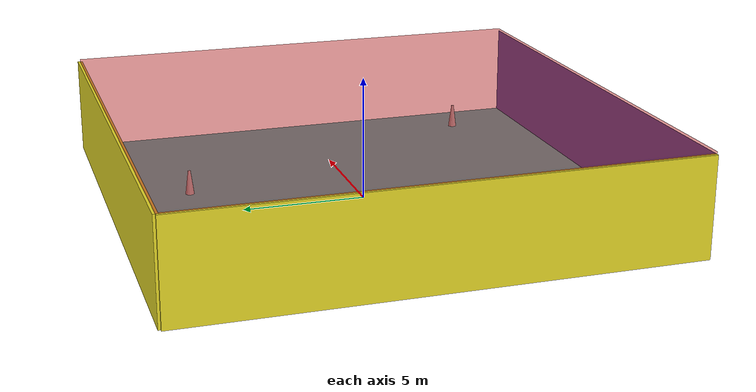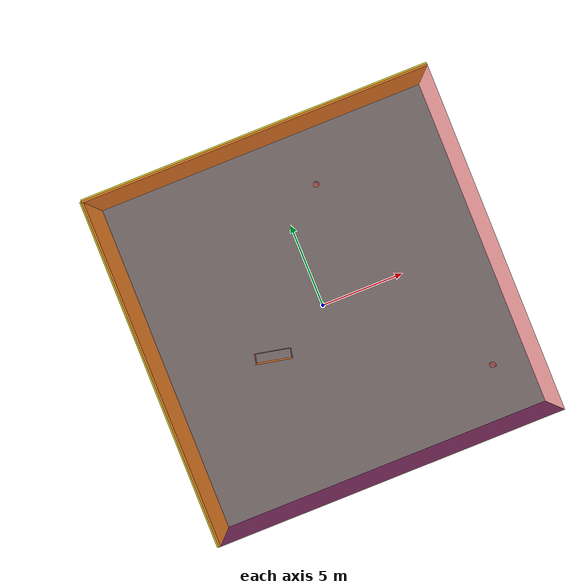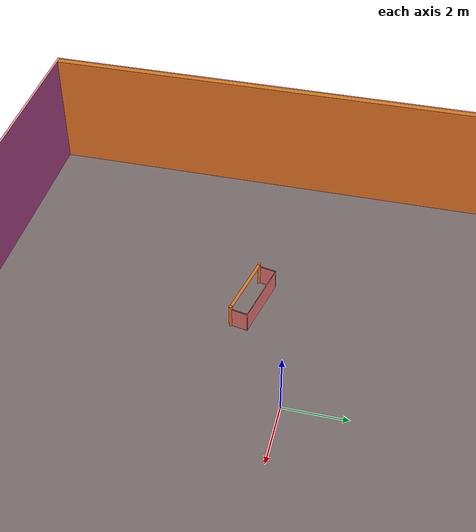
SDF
<sdf version="1.4">
 <world name="default">
  <physics type="ode">
   <max_step_size>0.001</max_step_size>
   <real_time_factor>1</real_time_factor>
   <real_time_update_rate>1000</real_time_update_rate>
   <gravity>0 0 -9.8</gravity>
  </physics>
  <scene><ambient>0.4 0.4 0.4 1</ambient><background>0.7 0.7 0.7 1</background><shadows>1</shadows></scene>
  <model name="Surrounding">
   <static>1</static>
   <link name="Ceiling">
    <collision name="Ceiling_Collision"><geometry><box><size>20 20 0.1</size></box></geometry></collision>
    <visual name="Ceiling_Visual">
     <geometry><box><size>20 20 0.1</size></box></geometry>
     <material>
      <script><uri>file://media/materials/scripts/gazebo.material</uri><name>Gazebo/RedTransparent</name></script>
     </material>
    </visual>
    <pose>0 0 4.05 0 0 0</pose>
   </link>
   <link name="Wall_South">
    <collision name="Wall_South_Collision">
     <geometry><box><size>20 0 4</size></box></geometry>
     <pose>0 0 2 0 -0 0</pose>
    </collision>
    <visual name="Wall_South_Visual">
     <pose>0 0 2 0 -0 0</pose>
     <geometry><box><size>20 0 4</size></box></geometry>
     <material>
      <script><uri>file://media/materials/scripts/gazebo.material</uri><name>Gazebo/BlueLaser</name></script>
     </material>
    </visual>
    <velocity_decay><linear>0</linear><angular>0</angular></velocity_decay>
    <pose>0 -10 0 0 -0 0</pose>
   </link>
   <link name="Wall_East">
    <collision name="Wall_21_Collision">
     <geometry><box><size>20 0 4</size></box></geometry>
     <pose>0 0 2 0 -0 0</pose>
    </collision>
    <visual name="Wall_21_Visual">
     <pose>0 0 2 0 -0 0</pose>
     <geometry><box><size>20 0 4</size></box></geometry>
     <material>
      <script><uri>file://media/materials/scripts/gazebo.material</uri><name>Gazebo/RedTransparent</name></script>
     </material>
    </visual>
    <velocity_decay><linear>0</linear><angular>0</angular></velocity_decay>
    <pose>10 0 0 0 -0 1.5708</pose>
   </link>
   <link name="Wall_North">
    <collision name="Wall_22_Collision">
     <geometry><box><size>20 0.2 4</size></box></geometry>
     <pose>0 0 2 0 -0 0</pose>
    </collision>
    <visual name="Wall_22_Visual">
     <pose>0 0 2 0 -0 0</pose>
     <geometry><box><size>20 0.2 4</size></box></geometry>
     <material>
      <script><uri>file://media/materials/scripts/gazebo.material</uri><name>Gazebo/YellowGlow</name></script>
     </material>
    </visual>
    <velocity_decay><linear>0</linear><angular>0</angular></velocity_decay>
    <pose>0 10 0 0 -0 0</pose>
   </link>
   <link name="Wall_West">
    <collision name="Wall_23_Collision">
     <geometry><box><size>20 0.2 4</size></box></geometry>
     <pose>0 0 2 0 -0 0</pose>
    </collision>
    <visual name="Wall_23_Visual">
     <pose>0 0 2 0 -0 0</pose>
     <geometry><box><size>20 0.2 4</size></box></geometry>
     <material>
      <script><uri>file://media/materials/scripts/gazebo.material</uri><name>Gazebo/YellowGlow</name></script>
     </material>
    </visual>
    <velocity_decay><linear>0</linear><angular>0</angular></velocity_decay>
    <pose>-10 0 0 0 0 -1.5708</pose>
   </link>
   <link name="Ground_link">
    <collision name="collision">
     <pose>0 0 .05 0 -0 0</pose>
     <geometry><box><size>20 20 0.1</size></box></geometry>
    </collision>
    <visual name="visual">
     <pose>0 0 .05 0 -0 0</pose>
     <geometry><box><size>20 20 0.1</size></box></geometry>
     <material>
      <script><uri>file://media/materials/scripts/gazebo.material</uri><name>Gazebo/TurquoiseGlow</name></script>
     </material>
    </visual>
   </link>
   <static>1</static>
  </model>
  <spherical_coordinates>
   <surface_model>EARTH_WGS84</surface_model>
   <latitude_deg>0</latitude_deg>
   <longitude_deg>0</longitude_deg>
   <elevation>0</elevation>
   <heading_deg>0</heading_deg>
  </spherical_coordinates>
  <light name="lightball_0" type="diffuse">
   <diffuse>0.8 0.8 0.8 1</diffuse>
   <specular>0.2 0.2 0.2 1</specular>
   <attenuation>
    <range>100</range>
    <constant>0.7</constant>
    <linear>0.01</linear>
    <quadratic>0.001</quadratic>
   </attenuation>
   <direction>-0.5 0.1 -0.9</direction>
   <pose>0.4879689555 -3.18788029003 2.43670007355 0 0 0</pose>
  </light>
  <light name="lightball_1" type="diffuse">
   <diffuse>0.8 0.8 0.8 1</diffuse>
   <specular>0.2 0.2 0.2 1</specular>
   <attenuation>
    <range>100</range>
    <constant>0.7</constant>
    <linear>0.01</linear>
    <quadratic>0.001</quadratic>
   </attenuation>
   <direction>-0.5 0.1 -0.9</direction>
   <pose>3.52102251568 0.373636862411 2.35916672204 0 0 0</pose>
  </light>
  <light name="lightball_2" type="diffuse">
   <diffuse>0.8 0.8 0.8 1</diffuse>
   <specular>0.2 0.2 0.2 1</specular>
   <attenuation>
    <range>100</range>
    <constant>0.7</constant>
    <linear>0.01</linear>
    <quadratic>0.001</quadratic>
   </attenuation>
   <direction>-0.5 0.1 -0.9</direction>
   <pose>-5.00937144967 -2.87927090985 1.91430054233 0 0 0</pose>
  </light>
  <light name="lightball_3" type="diffuse">
   <diffuse>0.8 0.8 0.8 1</diffuse>
   <specular>0.2 0.2 0.2 1</specular>
   <attenuation>
    <range>100</range>
    <constant>0.7</constant>
    <linear>0.01</linear>
    <quadratic>0.001</quadratic>
   </attenuation>
   <direction>-0.5 0.1 -0.9</direction>
   <pose>3.9084964897 -4.83248181586 0.632490823963 0 0 0</pose>
  </light>
  <light name="lightball_4" type="diffuse">
   <diffuse>0.8 0.8 0.8 1</diffuse>
   <specular>0.2 0.2 0.2 1</specular>
   <attenuation>
    <range>100</range>
    <constant>0.7</constant>
    <linear>0.01</linear>
    <quadratic>0.001</quadratic>
   </attenuation>
   <direction>-0.5 0.1 -0.9</direction>
   <pose>5.3800257256 -3.90532614267 3.06899828994 0 0 0</pose>
  </light>
  <light name="lightball_5" type="diffuse">
   <diffuse>0.8 0.8 0.8 1</diffuse>
   <specular>0.2 0.2 0.2 1</specular>
   <attenuation>
    <range>100</range>
    <constant>0.7</constant>
    <linear>0.01</linear>
    <quadratic>0.001</quadratic>
   </attenuation>
   <direction>-0.5 0.1 -0.9</direction>
   <pose>4.72970987815 9.3324938531 1.57392460339 0 0 0</pose>
  </light>
  <include>
   <uri>model://robocup_3Dsim_goal</uri>
   <pose>-3.79095309896 -1.92577547403 0 0 0 1.36692466717</pose>
  </include>
  <include>
   <uri>model://construction_cone</uri>
   <pose>2.25928037988 6.70466734674 0 0 0 2.95951789369</pose>
  </include>
  <include>
   <uri>model://construction_cone</uri>
   <pose>7.91877388021 -6.87873461788 0 0 0 2.53582878509</pose>
  </include>
 </world>
</sdf>

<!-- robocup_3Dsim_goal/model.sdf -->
<sdf version="1.5">
  <model name="robocup_3d_goal">
    <static>true</static>
    <link name="left_post">
      <pose>0 1.05 0.45 0 0 0</pose>
      <collision name="collision">
        <geometry>
          <cylinder>
            <radius>0.05</radius>
            <length>0.9</length>
          </cylinder>
        </geometry>
      </collision>
      <visual name="visual">
        <geometry>
          <cylinder>
            <radius>0.05</radius>
            <length>0.9</length>
          </cylinder>
        </geometry>
        <material>
          <script>
            <uri>file://media/materials/scripts/gazebo.material</uri>
            <name>Gazebo/ZincYellow</name>
          </script>
        </material>
      </visual>
    </link>
    <link name="left_support_horiz_lower">
      <pose>0.30 1.05 0.01 0 0 0</pose>
      <collision name="collision">
        <geometry>
          <box>
            <size>0.50 0.02 0.02</size>
          </box>
        </geometry>
      </collision>
      <visual name="visual">
        <geometry>
          <box>
            <size>0.50 0.02 0.02</size>
          </box>
        </geometry>
        <material>
          <script>
            <uri>file://media/materials/scripts/gazebo.material</uri>
            <name>Gazebo/White</name>
          </script>
        </material>
      </visual>
    </link>
    <link name="left_support_horiz_upper">
      <pose>0.30 1.05 0.79 0 0 0</pose>
      <collision name="collision">
        <geometry>
          <box>
            <size>0.50 0.02 0.02</size>
          </box>
        </geometry>
      </collision>
      <visual name="visual">
        <geometry>
          <box>
            <size>0.50 0.02 0.02</size>
          </box>
        </geometry>
        <material>
          <script>
            <uri>file://media/materials/scripts/gazebo.material</uri>
            <name>Gazebo/White</name>
          </script>
        </material>
      </visual>
    </link>
    <link name="left_support_vertical">
      <pose>0.56 1.05 0.4 0 1.5708 0</pose>
      <collision name="collision">
        <geometry>
          <box>
            <size>0.80 0.02 0.02</size>
          </box>
        </geometry>
      </collision>
      <visual name="visual">
        <geometry>
          <box>
            <size>0.80 0.02 0.02</size>
          </box>
        </geometry>
        <material>
          <script>
            <uri>file://media/materials/scripts/gazebo.material</uri>
            <name>Gazebo/White</name>
          </script>
        </material>
      </visual>
    </link>
    <link name="right_support_horiz_lower">
      <pose>0.30 -1.05 0.01 0 0 0</pose>
      <collision name="collision">
        <geometry>
          <box>
            <size>0.50 0.02 0.02</size>
          </box>
        </geometry>
      </collision>
      <visual name="visual">
        <geometry>
          <box>
            <size>0.50 0.02 0.02</size>
          </box>
        </geometry>
        <material>
          <script>
            <uri>file://media/materials/scripts/gazebo.material</uri>
            <name>Gazebo/White</name>
          </script>
        </material>
      </visual>
    </link>
    <link name="right_support_horiz_upper">
      <pose>0.30 -1.05 0.79 0 0 0</pose>
      <collision name="collision">
        <geometry>
          <box>
            <size>0.50 0.02 0.02</size>
          </box>
        </geometry>
      </collision>
      <visual name="visual">
        <geometry>
          <box>
            <size>0.50 0.02 0.02</size>
          </box>
        </geometry>
        <material>
          <script>
            <uri>file://media/materials/scripts/gazebo.material</uri>
            <name>Gazebo/White</name>
          </script>
        </material>
      </visual>
    </link>
    <link name="right_support_vertical">
      <pose>0.56 -1.05 0.4 0 1.5708 0</pose>
      <collision name="collision">
        <geometry>
          <box>
            <size>0.80 0.02 0.02</size>
          </box>
        </geometry>
      </collision>
      <visual name="visual">
        <geometry>
          <box>
            <size>0.80 0.02 0.02</size>
          </box>
        </geometry>
        <material>
          <script>
            <uri>file://media/materials/scripts/gazebo.material</uri>
            <name>Gazebo/White</name>
          </script>
        </material>
      </visual>
    </link>
    <link name="center_support_horiz_lower">
      <pose>0.56 0 0.01 0 1.5708 0</pose>
      <collision name="collision">
        <geometry>
          <box>
            <size>0.02 2.08 0.02</size>
          </box>
        </geometry>
      </collision>
      <visual name="visual">
        <geometry>
          <box>
            <size>0.02 2.08 0.02</size>
          </box>
        </geometry>
        <material>
          <script>
            <uri>file://media/materials/scripts/gazebo.material</uri>
            <name>Gazebo/White</name>
          </script>
        </material>
      </visual>
    </link>
    <link name="center_support_horiz_upper">
      <pose>0.56 0 0.79 0 1.5708 0</pose>
      <collision name="collision">
        <geometry>
          <box>
            <size>0.02 2.08 0.02</size>
          </box>
        </geometry>
      </collision>
      <visual name="visual">
        <geometry>
          <box>
            <size>0.02 2.08 0.02</size>
          </box>
        </geometry>
        <material>
          <script>
            <uri>file://media/materials/scripts/gazebo.material</uri>
            <name>Gazebo/White</name>
          </script>
        </material>
      </visual>
    </link>
    <link name="right_post">
      <pose>0 -1.05 0.45 0 0 0</pose>
      <collision name="collision">
        <geometry>
          <cylinder>
            <radius>0.05</radius>
            <length>0.9</length>
          </cylinder>
        </geometry>
      </collision>
      <visual name="visual">
        <geometry>
          <cylinder>
            <radius>0.05</radius>
            <length>0.9</length>
          </cylinder>
        </geometry>
        <material>
          <script>
            <uri>file://media/materials/scripts/gazebo.material</uri>
            <name>Gazebo/ZincYellow</name>
          </script>
        </material>
      </visual>
    </link>
    <link name="crossbar">
      <pose>0 0 0.85 1.57 1.57 0</pose>
      <collision name="collision">
        <geometry>
          <cylinder>
            <radius>0.05</radius>
            <length>2.0</length>
          </cylinder>
        </geometry>
      </collision>
      <visual name="visual">
        <geometry>
          <cylinder>
            <radius>0.05</radius>
            <length>2.0</length>
          </cylinder>
        </geometry>
        <material>
          <script>
            <uri>file://media/materials/scripts/gazebo.material</uri>
            <name>Gazebo/ZincYellow</name>
          </script>
        </material>
      </visual>
    </link>
    <link name="center_net">
      <pose>0.56 0 0.40 0 0 0</pose>
      <collision name="collision">
        <geometry>
          <box>
            <size>0.01 2.1 0.80</size>
          </box>
        </geometry>
      </collision>
      <visual name="visual">
        <geometry>
          <box>
            <size>0.01 2.1 0.80</size>
          </box>
        </geometry>
        <material>
          <script>
            <uri>model://../model_source/models/robocup09_spl_field/materials/scripts/</uri>
            <uri>model://../model_source/models/robocup09_spl_field/materials/textures/</uri>
            <name>RoboCup/Net</name>
          </script>
        </material>
      </visual>
    </link>
    <link name="left_net">
      <pose>0.30 1.05 0.40 0 0 0</pose>
      <collision name="collision">
        <geometry>
          <box>
            <size>0.50 0.01 0.76</size>
          </box>
        </geometry>
      </collision>
      <visual name="visual">
        <geometry>
          <box>
            <size>0.50 0.01 0.76</size>
          </box>
        </geometry>
        <material>
          <script>
            <uri>model://../model_source/models/robocup09_spl_field/materials/scripts/</uri>
            <uri>model://../model_source/models/robocup09_spl_field/materials/textures/</uri>
            <name>RoboCup/Net</name>
          </script>
        </material>
      </visual>
    </link>
    <link name="right_net">
      <pose>0.30 -1.05 0.40 0 0 0</pose>
      <collision name="collision">
        <geometry>
          <box>
            <size>0.50 0.01 0.76</size>
          </box>
        </geometry>
      </collision>
      <visual name="visual">
        <geometry>
          <box>
            <size>0.50 0.01 0.76</size>
          </box>
        </geometry>
        <material>
          <script>
            <uri>model://../model_source/models/robocup09_spl_field/materials/scripts/</uri>
            <uri>model://../model_source/models/robocup09_spl_field/materials/textures/</uri>
            <name>RoboCup/Net</name>
          </script>
        </material>
      </visual>
    </link>
  </model>
</sdf>

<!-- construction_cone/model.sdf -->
<sdf version="1.5">
  <model name="Construction Cone">
    <link name="link">
      <collision name="collision">
        <geometry>
          <mesh>
            <scale>10 10 10</scale>
            <uri>file://isr-testbed/construction_cone/meshes/construction_cone.dae</uri>
          </mesh>
        </geometry>
      </collision>
      <visual name="visual">
        <geometry>
          <mesh>
            <scale>10 10 10</scale>
            <uri>file://isr-testbed/construction_cone/meshes/construction_cone.dae</uri>
          </mesh>
        </geometry>
      </visual>
    </link>
  </model>
</sdf>
